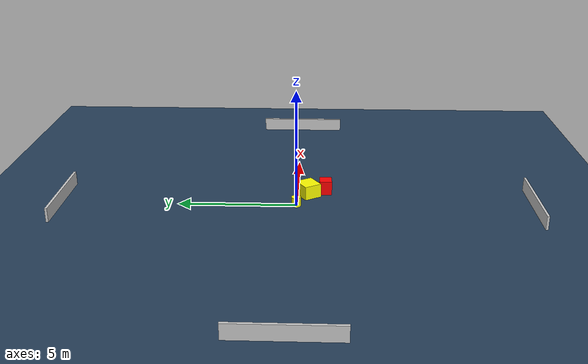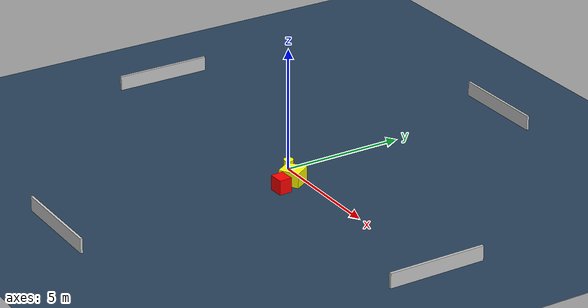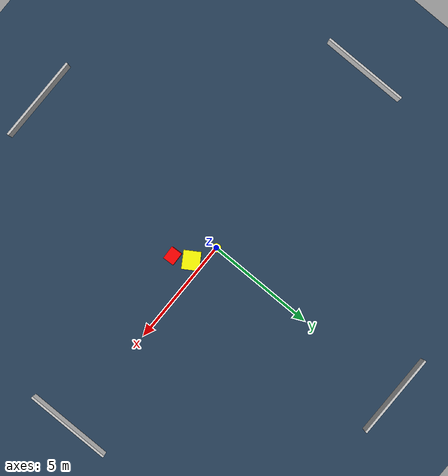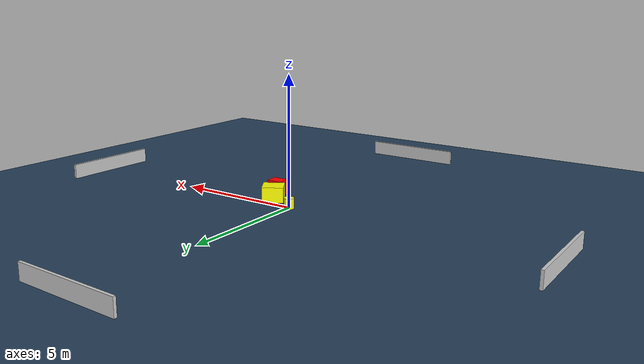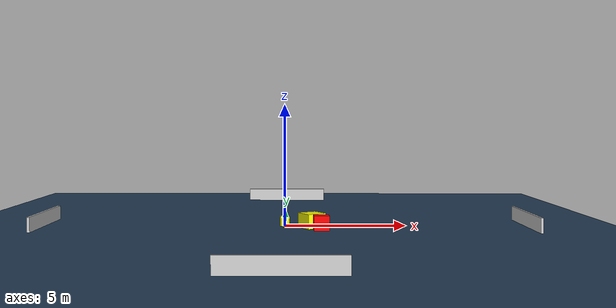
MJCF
<?xml version="1.0" ?>
<mujoco model="generated_environment">
  <option timestep="0.01" integrator="RK4" cone="elliptic"/>
  <default>
    <geom density="1"/>
  </default>
  <asset>
    <texture builtin="gradient" height="3072" name="skybox" rgb1="0.3 0.5 0.7" rgb2="0 0 0" type="skybox" width="512"/>
    <texture builtin="checker" height="300" name="groundplane" rgb1="0.2 0.3 0.4" rgb2="0.1 0.2 0.3" type="2d" width="300"/>
    <material name="groundplane" reflectance="0.2" texrepeat="5 5" texture="groundplane"/>
  </asset>
  <worldbody>
    <light dir="0 0 -1" directional="true" pos="0 0 1.5"/>
    <geom condim="3" friction="0.5 0.005 0.001" material="groundplane" name="floor" pos="0 0 0" size="0 0 0.05" type="plane"/>
    <body name="walls">
      <geom name="wall_1" condim="4" pos="-10.0 0.0 0.3" rgba="0.800000011920929 0.800000011920929 0.800000011920929 1.0" size="0.05 2.0 0.3" type="box"/>
      <geom name="wall_2" condim="4" pos="10.0 0.0 0.3" rgba="0.800000011920929 0.800000011920929 0.800000011920929 1.0" size="0.05 2.0 0.3" type="box"/>
      <geom name="wall_3" condim="4" pos="0.0 -10.0 0.3" rgba="0.800000011920929 0.800000011920929 0.800000011920929 1.0" size="2.0 0.05 0.3" type="box"/>
      <geom name="wall_4" condim="4" pos="0.0 10.0 0.3" rgba="0.800000011920929 0.800000011920929 0.800000011920929 1.0" size="2.0 0.05 0.3" type="box"/>
    </body>
    <body name="robot">
      <joint name="joint_x" type="slide" pos="0 0 0" axis="1 0 0"/>
      <joint name="joint_y" type="slide" pos="0 0 0" axis="0 1 0"/>
      <geom name="robot" type="cylinder" pos="0.0 0.0 0.2" size="0.2 0.2 0.0" mass="5.0" friction="1.0 0.005 0.0001" condim="4" rgba="1.0 1.0 0.0 1.0"/>
    </body>
    <body name="obstacle_1_movable">
      <geom name="obstacle_1_movable" condim="4" pos="1.1081364155662965 -0.48878944562821874 0.3" euler="0 0 302.322314854129" friction="0.0 0.005 0.001" rgba="1.0 1.0 0.0 1.0" size="0.3890731111667604 0.4173928234689632 0.3" type="box" mass="0.1"/>
      <joint type="free"/>
    </body>
    <body name="obstacle_2_static">
      <geom name="obstacle_2_static" condim="4" pos="1.473244254661521 -1.2376192181940622 0.3" euler="0 0 2.5784913960045497" friction="0.0 0.005 0.001" rgba="1.0 0.0 0.0 1.0" size="0.30890364147274924 0.2617329326216139 0.3" type="box"/>
    </body>
  </worldbody>
  <actuator>
    <motor name="actuator_x" joint="joint_x" gear="1" ctrlrange="-1 1"/>
    <motor name="actuator_y" joint="joint_y" gear="1" ctrlrange="-1 1"/>
  </actuator>
</mujoco>
